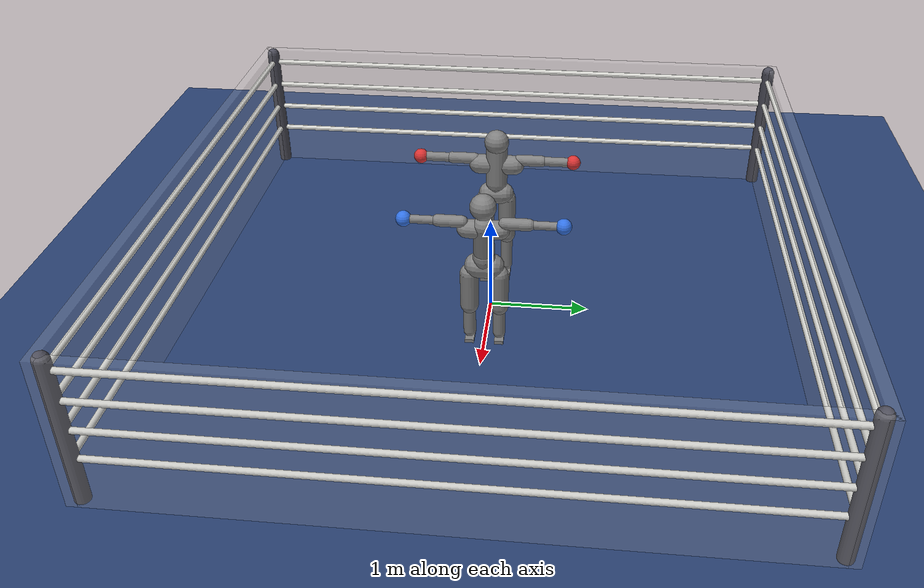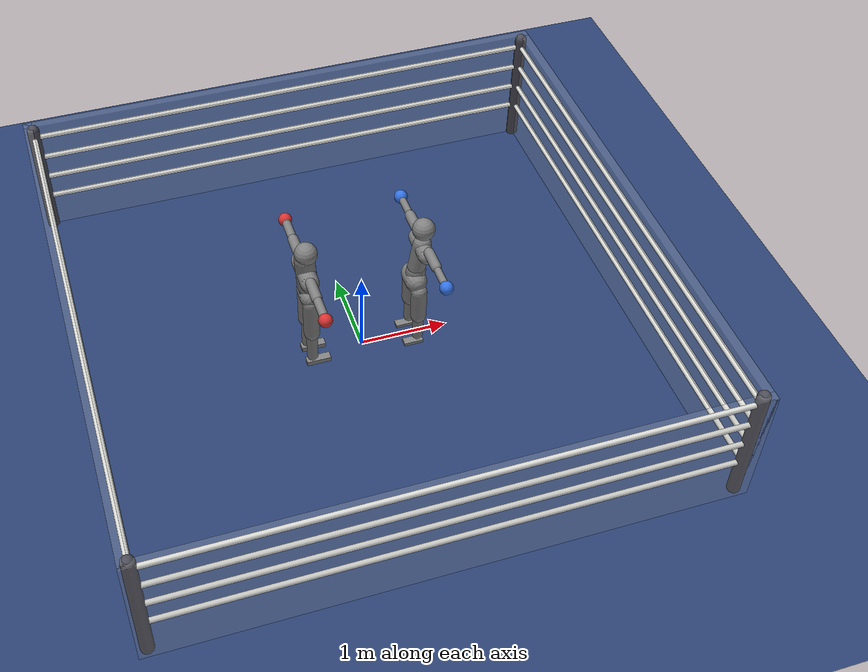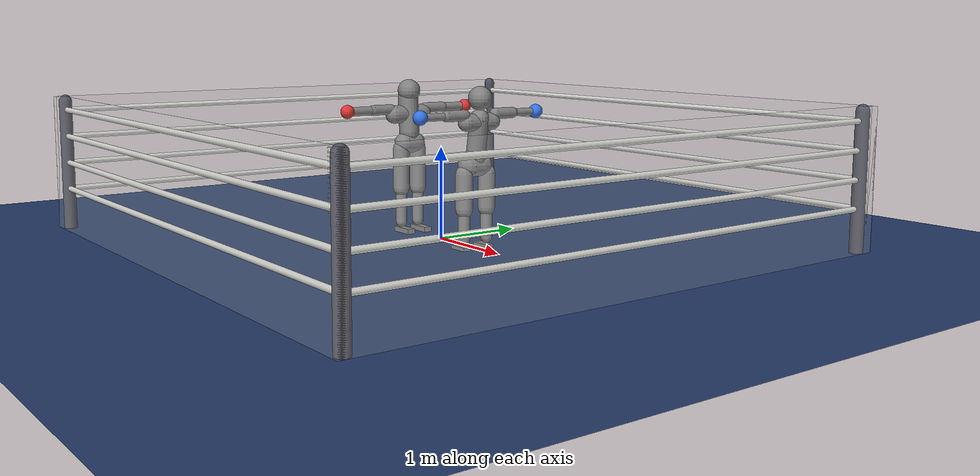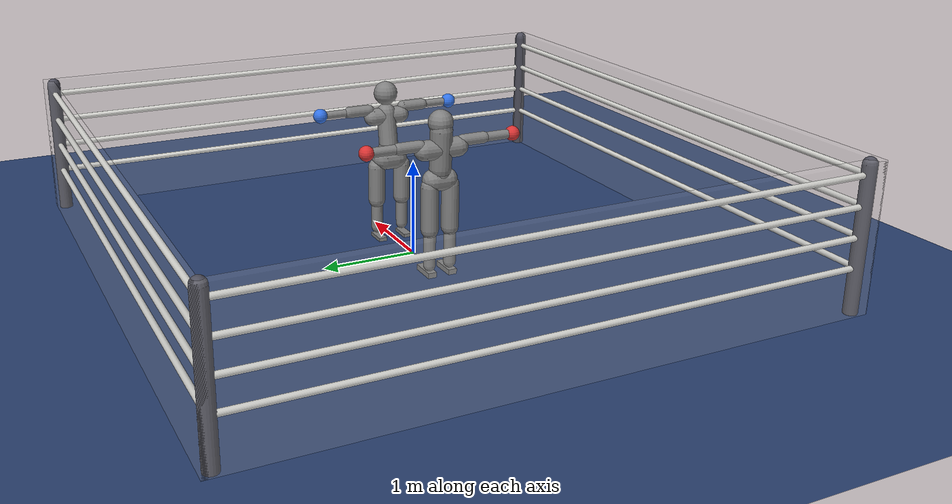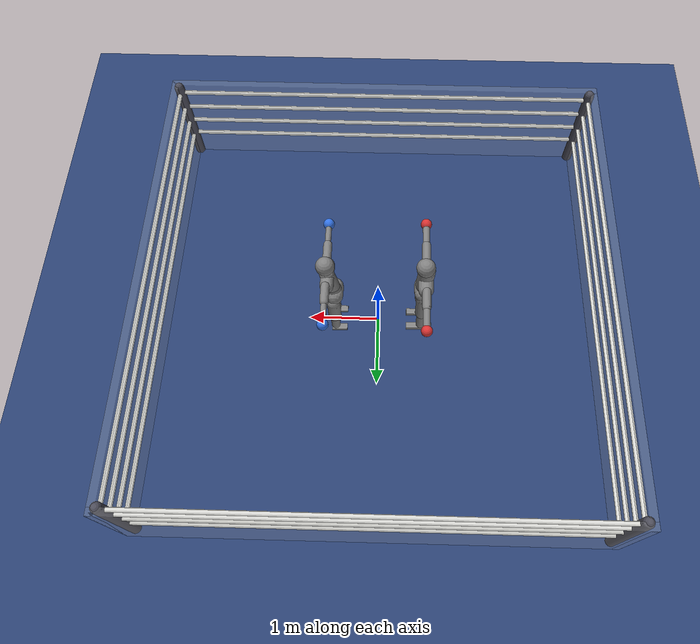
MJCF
<mujoco model="trump_vs_grandma_spar">
  <compiler angle="degree" inertiafromgeom="true" autolimits="true"/>
  <option timestep="0.005" iterations="10" ls_iterations="10" integrator="implicitfast">
    <flag eulerdamp="disable"/>
  </option>
  <default>
    <geom contype="1" conaffinity="1" condim="3" friction="1.0 0.005 0.0001" density="1000" margin="0"/>
    <joint limited="true"/>
    <position ctrllimited="true"/>
  </default>
  <asset>
    <texture name="grid" type="2d" builtin="checker" rgb1=".18 .28 .48" rgb2=".14 .22 .40" width="300" height="300"/>
    <material name="grid" texture="grid" texrepeat="6 6" reflectance="0"/>
  </asset>
  <worldbody>
    <light pos="0 0 5" dir="0 0 -1" directional="true"/>
    <geom name="floor" type="plane" contype="3" conaffinity="3" size="0 0 0.05" material="grid" friction="1.0 0.005 0.0001"/>
    <geom name="rope_n" type="box" pos="0.0000 3.1000 0.7500" size="3.1500 0.0500 0.7500" rgba="0.8 0.8 0.8 0.15"/>
    <geom name="rope_s" type="box" pos="0.0000 -3.1000 0.7500" size="3.1500 0.0500 0.7500" rgba="0.8 0.8 0.8 0.15"/>
    <geom name="rope_e" type="box" pos="3.1000 0.0000 0.7500" size="0.0500 3.1500 0.7500" rgba="0.8 0.8 0.8 0.15"/>
    <geom name="rope_w" type="box" pos="-3.1000 0.0000 0.7500" size="0.0500 3.1500 0.7500" rgba="0.8 0.8 0.8 0.15"/>
    <body name="a_pelvis" pos="-0.6000 0.0000 0.9982" quat="1.00000 0 0 0.00000">
      <freejoint name="a_root"/>
      <geom name="a_pelvis_geom" type="capsule" fromto="0.0000 -0.0700 0.0000 0.0000 0.0700 0.0000" size="0.1121" mass="9.6630" />
      <geom name="a_pelvis_up" type="capsule" fromto="0.0000 0.0000 0.0000 -0.0074 0.0000 0.0765" size="0.1009" mass="5.7156" />
      <body name="a_torso" pos="-0.0074 0.0000 0.0965">
        <joint name="a_abdomen_z" type="hinge" axis="0 0 1" range="-45 45" damping="0.5" armature="0.08" stiffness="0"/>
        <joint name="a_abdomen_y" type="hinge" axis="0 1 0" range="-60 30" damping="0.5" armature="0.08" stiffness="0"/>
        <joint name="a_abdomen_x" type="hinge" axis="1 0 0" range="-35 35" damping="0.5" armature="0.08" stiffness="0"/>
        <geom name="a_torso_geom" type="capsule" fromto="0.0000 0.0000 0.0200 -0.0223 0.0000 0.4131" size="0.1121" mass="38.4465" />
        <geom name="a_chest_geom" type="capsule" fromto="-0.0178 -0.1841 0.2257 -0.0178 0.1841 0.2257" size="0.1009" mass="0.5"/>
        <geom name="a_head_geom" type="sphere" pos="-0.0037 0.0000 0.4861" size="0.1250" mass="8.7723" />
        <body name="a_upper_arm_l" pos="-0.0223 0.2301 0.2821">
          <joint name="a_shoulder_x_l" type="hinge" axis="1 0 0" range="-170 30" damping="0.5" armature="0.03" stiffness="0"/>
          <joint name="a_shoulder_z_l" type="hinge" axis="0 0 1" range="-110 110" damping="0.5" armature="0.03" stiffness="0"/>
          <geom name="a_upper_arm_l_geom" type="capsule" fromto="0.0000 0.0000 0.0000 0.0000 0.2324 0.0000" size="0.0580" mass="3.0324" />
          <body name="a_forearm_l" pos="0.0000 0.2324 0.0000">
            <joint name="a_elbow_l" type="hinge" axis="0 0 1" range="-150 0" damping="0.5" armature="0.02" stiffness="0"/>
            <geom name="a_forearm_l_geom" type="capsule" fromto="0.0000 0.0000 0.0000 0.0000 0.2561 0.0000" size="0.0480" mass="1.7328" />
            <geom name="a_glove_l" type="sphere" pos="0.0000 0.3236 0.0000" size="0.0750" mass="0.9328" rgba="0.85 0.2 0.2 1"/>
          </body>
        </body>
        <body name="a_upper_arm_r" pos="-0.0223 -0.2301 0.2821">
          <joint name="a_shoulder_x_r" type="hinge" axis="1 0 0" range="-30 170" damping="0.5" armature="0.03" stiffness="0"/>
          <joint name="a_shoulder_z_r" type="hinge" axis="0 0 1" range="-110 110" damping="0.5" armature="0.03" stiffness="0"/>
          <geom name="a_upper_arm_r_geom" type="capsule" fromto="0.0000 0.0000 0.0000 0.0000 -0.2324 0.0000" size="0.0580" mass="3.0324" />
          <body name="a_forearm_r" pos="0.0000 -0.2324 0.0000">
            <joint name="a_elbow_r" type="hinge" axis="0 0 1" range="0 150" damping="0.5" armature="0.02" stiffness="0"/>
            <geom name="a_forearm_r_geom" type="capsule" fromto="0.0000 0.0000 0.0000 0.0000 -0.2561 0.0000" size="0.0480" mass="1.7328" />
            <geom name="a_glove_r" type="sphere" pos="0.0000 -0.3236 0.0000" size="0.0750" mass="0.9328" rgba="0.85 0.2 0.2 1"/>
          </body>
        </body>
      </body>
      <body name="a_thigh_l" pos="-0.0074 0.1113 -0.0593">
        <joint name="a_hip_x_l" type="hinge" axis="1 0 0" range="-40 40" damping="0.5" armature="0.1" stiffness="0"/>
        <joint name="a_hip_z_l" type="hinge" axis="0 0 1" range="-35 35" damping="0.5" armature="0.1" stiffness="0"/>
        <joint name="a_hip_y_l" type="hinge" axis="0 1 0" range="-120 30" damping="0.5" armature="0.1" stiffness="0"/>
        <geom name="a_thigh_l_geom" type="capsule" fromto="0.0000 0.0000 0.0000 0.0000 0.0000 -0.4454" size="0.0900" mass="10.8300" />
        <body name="a_shin_l" pos="0.0000 0.0000 -0.4454">
          <joint name="a_knee_l" type="hinge" axis="0 1 0" range="0 150" damping="0.5" armature="0.1" stiffness="0"/>
          <geom name="a_shin_l_geom" type="capsule" fromto="0.0000 0.0000 0.0000 0.0000 0.0000 -0.3790" size="0.0620" mass="5.0359" />
          <body name="a_foot_l" pos="0.0000 0.0000 -0.3790">
            <joint name="a_ankle_y_l" type="hinge" axis="0 1 0" range="-20 50" damping="0.5" armature="0.03" stiffness="0"/>
            <joint name="a_ankle_x_l" type="hinge" axis="1 0 0" range="-25 25" damping="0.5" armature="0.03" stiffness="0"/>
            <geom name="a_foot_l_geom" type="box" pos="0.0627 0.0000 -0.0870" size="0.1363 0.0450 0.0280" mass="1.5704" friction="1.0 0.005 0.0001"/>
            <site name="a_foot_l_site" pos="0.0627 0.0000 -0.0870" size="0.01"/>
          </body>
        </body>
      </body>
      <body name="a_thigh_r" pos="-0.0074 -0.1113 -0.0593">
        <joint name="a_hip_x_r" type="hinge" axis="1 0 0" range="-40 40" damping="0.5" armature="0.1" stiffness="0"/>
        <joint name="a_hip_z_r" type="hinge" axis="0 0 1" range="-35 35" damping="0.5" armature="0.1" stiffness="0"/>
        <joint name="a_hip_y_r" type="hinge" axis="0 1 0" range="-120 30" damping="0.5" armature="0.1" stiffness="0"/>
        <geom name="a_thigh_r_geom" type="capsule" fromto="0.0000 0.0000 0.0000 0.0000 0.0000 -0.4454" size="0.0900" mass="10.8300" />
        <body name="a_shin_r" pos="0.0000 0.0000 -0.4454">
          <joint name="a_knee_r" type="hinge" axis="0 1 0" range="0 150" damping="0.5" armature="0.1" stiffness="0"/>
          <geom name="a_shin_r_geom" type="capsule" fromto="0.0000 0.0000 0.0000 0.0000 0.0000 -0.3790" size="0.0620" mass="5.0359" />
          <body name="a_foot_r" pos="0.0000 0.0000 -0.3790">
            <joint name="a_ankle_y_r" type="hinge" axis="0 1 0" range="-20 50" damping="0.5" armature="0.03" stiffness="0"/>
            <joint name="a_ankle_x_r" type="hinge" axis="1 0 0" range="-25 25" damping="0.5" armature="0.03" stiffness="0"/>
            <geom name="a_foot_r_geom" type="box" pos="0.0627 0.0000 -0.0870" size="0.1363 0.0450 0.0280" mass="1.5704" friction="1.0 0.005 0.0001"/>
            <site name="a_foot_r_site" pos="0.0627 0.0000 -0.0870" size="0.01"/>
          </body>
        </body>
      </body>
    </body>
    <body name="b_pelvis" pos="0.6000 0.0000 0.8758" quat="0.00000 0 0 1.00000">
      <freejoint name="b_root"/>
      <geom name="b_pelvis_geom" type="capsule" fromto="0.0000 -0.0700 0.0000 0.0000 0.0700 0.0000" size="0.1216" mass="7.2734" />
      <geom name="b_pelvis_up" type="capsule" fromto="0.0000 0.0000 0.0000 -0.0203 0.0000 0.1106" size="0.1094" mass="5.0380" />
      <body name="b_torso" pos="-0.0203 0.0000 0.1306">
        <joint name="b_abdomen_z" type="hinge" axis="0 0 1" range="-45 45" damping="0.5" armature="0.08" stiffness="0"/>
        <joint name="b_abdomen_y" type="hinge" axis="0 1 0" range="-60 30" damping="0.5" armature="0.08" stiffness="0"/>
        <joint name="b_abdomen_x" type="hinge" axis="1 0 0" range="-35 35" damping="0.5" armature="0.08" stiffness="0"/>
        <geom name="b_torso_geom" type="capsule" fromto="0.0000 0.0000 0.0200 -0.0561 0.0000 0.3509" size="0.1004" mass="30.7785" />
        <geom name="b_chest_geom" type="capsule" fromto="-0.0509 -0.1584 0.3169 -0.0509 0.1584 0.3169" size="0.0904" mass="0.5"/>
        <geom name="b_head_geom" type="sphere" pos="-0.0666 0.0000 0.5613" size="0.1250" mass="7.0227" />
        <body name="b_upper_arm_l" pos="-0.0636 0.1980 0.3961">
          <joint name="b_shoulder_x_l" type="hinge" axis="1 0 0" range="-170 30" damping="0.5" armature="0.03" stiffness="0"/>
          <joint name="b_shoulder_z_l" type="hinge" axis="0 0 1" range="-110 110" damping="0.5" armature="0.03" stiffness="0"/>
          <geom name="b_upper_arm_l_geom" type="capsule" fromto="0.0000 0.0000 0.0000 0.0000 0.2236 0.0000" size="0.0580" mass="2.4276" />
          <body name="b_forearm_l" pos="0.0000 0.2236 0.0000">
            <joint name="b_elbow_l" type="hinge" axis="0 0 1" range="-150 0" damping="0.5" armature="0.02" stiffness="0"/>
            <geom name="b_forearm_l_geom" type="capsule" fromto="0.0000 0.0000 0.0000 0.0000 0.2519 0.0000" size="0.0402" mass="1.3872" />
            <geom name="b_glove_l" type="sphere" pos="0.0000 0.3194 0.0000" size="0.0750" mass="0.8032" rgba="0.2 0.45 0.9 1"/>
          </body>
        </body>
        <body name="b_upper_arm_r" pos="-0.0636 -0.1980 0.3961">
          <joint name="b_shoulder_x_r" type="hinge" axis="1 0 0" range="-30 170" damping="0.5" armature="0.03" stiffness="0"/>
          <joint name="b_shoulder_z_r" type="hinge" axis="0 0 1" range="-110 110" damping="0.5" armature="0.03" stiffness="0"/>
          <geom name="b_upper_arm_r_geom" type="capsule" fromto="0.0000 0.0000 0.0000 0.0000 -0.2236 0.0000" size="0.0580" mass="2.4276" />
          <body name="b_forearm_r" pos="0.0000 -0.2236 0.0000">
            <joint name="b_elbow_r" type="hinge" axis="0 0 1" range="0 150" damping="0.5" armature="0.02" stiffness="0"/>
            <geom name="b_forearm_r_geom" type="capsule" fromto="0.0000 0.0000 0.0000 0.0000 -0.2519 0.0000" size="0.0402" mass="1.3872" />
            <geom name="b_glove_r" type="sphere" pos="0.0000 -0.3194 0.0000" size="0.0750" mass="0.8032" rgba="0.2 0.45 0.9 1"/>
          </body>
        </body>
      </body>
      <body name="b_thigh_l" pos="-0.0109 0.1457 -0.0890">
        <joint name="b_hip_x_l" type="hinge" axis="1 0 0" range="-40 40" damping="0.5" armature="0.1" stiffness="0"/>
        <joint name="b_hip_z_l" type="hinge" axis="0 0 1" range="-35 35" damping="0.5" armature="0.1" stiffness="0"/>
        <joint name="b_hip_y_l" type="hinge" axis="0 1 0" range="-120 30" damping="0.5" armature="0.1" stiffness="0"/>
        <geom name="b_thigh_l_geom" type="capsule" fromto="0.0000 0.0000 0.0000 0.0000 0.0000 -0.3653" size="0.0900" mass="8.6700" />
        <body name="b_shin_l" pos="0.0000 0.0000 -0.3653">
          <joint name="b_knee_l" type="hinge" axis="0 1 0" range="0 150" damping="0.5" armature="0.1" stiffness="0"/>
          <geom name="b_shin_l_geom" type="capsule" fromto="0.0000 0.0000 0.0000 0.0000 0.0000 -0.3152" size="0.0620" mass="4.0316" />
          <body name="b_foot_l" pos="0.0000 0.0000 -0.3152">
            <joint name="b_ankle_y_l" type="hinge" axis="0 1 0" range="-20 50" damping="0.5" armature="0.03" stiffness="0"/>
            <joint name="b_ankle_x_l" type="hinge" axis="1 0 0" range="-25 25" damping="0.5" armature="0.03" stiffness="0"/>
            <geom name="b_foot_l_geom" type="box" pos="0.0506 0.0000 -0.1050" size="0.1100 0.0450 0.0280" mass="1.2572" friction="1.0 0.005 0.0001"/>
            <site name="b_foot_l_site" pos="0.0506 0.0000 -0.1050" size="0.01"/>
          </body>
        </body>
      </body>
      <body name="b_thigh_r" pos="-0.0109 -0.1457 -0.0890">
        <joint name="b_hip_x_r" type="hinge" axis="1 0 0" range="-40 40" damping="0.5" armature="0.1" stiffness="0"/>
        <joint name="b_hip_z_r" type="hinge" axis="0 0 1" range="-35 35" damping="0.5" armature="0.1" stiffness="0"/>
        <joint name="b_hip_y_r" type="hinge" axis="0 1 0" range="-120 30" damping="0.5" armature="0.1" stiffness="0"/>
        <geom name="b_thigh_r_geom" type="capsule" fromto="0.0000 0.0000 0.0000 0.0000 0.0000 -0.3653" size="0.0900" mass="8.6700" />
        <body name="b_shin_r" pos="0.0000 0.0000 -0.3653">
          <joint name="b_knee_r" type="hinge" axis="0 1 0" range="0 150" damping="0.5" armature="0.1" stiffness="0"/>
          <geom name="b_shin_r_geom" type="capsule" fromto="0.0000 0.0000 0.0000 0.0000 0.0000 -0.3152" size="0.0620" mass="4.0316" />
          <body name="b_foot_r" pos="0.0000 0.0000 -0.3152">
            <joint name="b_ankle_y_r" type="hinge" axis="0 1 0" range="-20 50" damping="0.5" armature="0.03" stiffness="0"/>
            <joint name="b_ankle_x_r" type="hinge" axis="1 0 0" range="-25 25" damping="0.5" armature="0.03" stiffness="0"/>
            <geom name="b_foot_r_geom" type="box" pos="0.0506 0.0000 -0.1050" size="0.1100 0.0450 0.0280" mass="1.2572" friction="1.0 0.005 0.0001"/>
            <site name="b_foot_r_site" pos="0.0506 0.0000 -0.1050" size="0.01"/>
          </body>
        </body>
      </body>
    </body>
      <geom name="rope_n_0" type="capsule" fromto="-3.05 3.05 0.45 3.05 3.05 0.45" size="0.03" solref="0.2 1" contype="3" conaffinity="3" rgba="0.86 0.86 0.84 1"/>
    <geom name="rope_s_0" type="capsule" fromto="-3.05 -3.05 0.45 3.05 -3.05 0.45" size="0.03" solref="0.2 1" contype="3" conaffinity="3" rgba="0.86 0.86 0.84 1"/>
    <geom name="rope_e_0" type="capsule" fromto="3.05 -3.05 0.45 3.05 3.05 0.45" size="0.03" solref="0.2 1" contype="3" conaffinity="3" rgba="0.86 0.86 0.84 1"/>
    <geom name="rope_w_0" type="capsule" fromto="-3.05 -3.05 0.45 -3.05 3.05 0.45" size="0.03" solref="0.2 1" contype="3" conaffinity="3" rgba="0.86 0.86 0.84 1"/>
    <geom name="rope_n_1" type="capsule" fromto="-3.05 3.05 0.75 3.05 3.05 0.75" size="0.03" solref="0.2 1" contype="3" conaffinity="3" rgba="0.86 0.86 0.84 1"/>
    <geom name="rope_s_1" type="capsule" fromto="-3.05 -3.05 0.75 3.05 -3.05 0.75" size="0.03" solref="0.2 1" contype="3" conaffinity="3" rgba="0.86 0.86 0.84 1"/>
    <geom name="rope_e_1" type="capsule" fromto="3.05 -3.05 0.75 3.05 3.05 0.75" size="0.03" solref="0.2 1" contype="3" conaffinity="3" rgba="0.86 0.86 0.84 1"/>
    <geom name="rope_w_1" type="capsule" fromto="-3.05 -3.05 0.75 -3.05 3.05 0.75" size="0.03" solref="0.2 1" contype="3" conaffinity="3" rgba="0.86 0.86 0.84 1"/>
    <geom name="rope_n_2" type="capsule" fromto="-3.05 3.05 1.05 3.05 3.05 1.05" size="0.03" solref="0.2 1" contype="3" conaffinity="3" rgba="0.86 0.86 0.84 1"/>
    <geom name="rope_s_2" type="capsule" fromto="-3.05 -3.05 1.05 3.05 -3.05 1.05" size="0.03" solref="0.2 1" contype="3" conaffinity="3" rgba="0.86 0.86 0.84 1"/>
    <geom name="rope_e_2" type="capsule" fromto="3.05 -3.05 1.05 3.05 3.05 1.05" size="0.03" solref="0.2 1" contype="3" conaffinity="3" rgba="0.86 0.86 0.84 1"/>
    <geom name="rope_w_2" type="capsule" fromto="-3.05 -3.05 1.05 -3.05 3.05 1.05" size="0.03" solref="0.2 1" contype="3" conaffinity="3" rgba="0.86 0.86 0.84 1"/>
    <geom name="rope_n_3" type="capsule" fromto="-3.05 3.05 1.35 3.05 3.05 1.35" size="0.03" solref="0.2 1" contype="3" conaffinity="3" rgba="0.86 0.86 0.84 1"/>
    <geom name="rope_s_3" type="capsule" fromto="-3.05 -3.05 1.35 3.05 -3.05 1.35" size="0.03" solref="0.2 1" contype="3" conaffinity="3" rgba="0.86 0.86 0.84 1"/>
    <geom name="rope_e_3" type="capsule" fromto="3.05 -3.05 1.35 3.05 3.05 1.35" size="0.03" solref="0.2 1" contype="3" conaffinity="3" rgba="0.86 0.86 0.84 1"/>
    <geom name="rope_w_3" type="capsule" fromto="-3.05 -3.05 1.35 -3.05 3.05 1.35" size="0.03" solref="0.2 1" contype="3" conaffinity="3" rgba="0.86 0.86 0.84 1"/>
    <geom name="post_ne" type="capsule" fromto="3.05 3.05 0 3.05 3.05 1.45" size="0.07" contype="3" conaffinity="3" rgba="0.3 0.3 0.35 1"/>
    <geom name="post_nw" type="capsule" fromto="-3.05 3.05 0 -3.05 3.05 1.45" size="0.07" contype="3" conaffinity="3" rgba="0.3 0.3 0.35 1"/>
    <geom name="post_se" type="capsule" fromto="3.05 -3.05 0 3.05 -3.05 1.45" size="0.07" contype="3" conaffinity="3" rgba="0.3 0.3 0.35 1"/>
    <geom name="post_sw" type="capsule" fromto="-3.05 -3.05 0 -3.05 -3.05 1.45" size="0.07" contype="3" conaffinity="3" rgba="0.3 0.3 0.35 1"/>
  </worldbody>
  <contact>
    <exclude body1="a_pelvis" body2="a_torso"/>
    <exclude body1="a_pelvis" body2="a_thigh_l"/>
    <exclude body1="a_thigh_l" body2="a_shin_l"/>
    <exclude body1="a_shin_l" body2="a_foot_l"/>
    <exclude body1="a_torso" body2="a_upper_arm_l"/>
    <exclude body1="a_upper_arm_l" body2="a_forearm_l"/>
    <exclude body1="a_pelvis" body2="a_thigh_r"/>
    <exclude body1="a_thigh_r" body2="a_shin_r"/>
    <exclude body1="a_shin_r" body2="a_foot_r"/>
    <exclude body1="a_torso" body2="a_upper_arm_r"/>
    <exclude body1="a_upper_arm_r" body2="a_forearm_r"/>
    <exclude body1="b_pelvis" body2="b_torso"/>
    <exclude body1="b_pelvis" body2="b_thigh_l"/>
    <exclude body1="b_thigh_l" body2="b_shin_l"/>
    <exclude body1="b_shin_l" body2="b_foot_l"/>
    <exclude body1="b_torso" body2="b_upper_arm_l"/>
    <exclude body1="b_upper_arm_l" body2="b_forearm_l"/>
    <exclude body1="b_pelvis" body2="b_thigh_r"/>
    <exclude body1="b_thigh_r" body2="b_shin_r"/>
    <exclude body1="b_shin_r" body2="b_foot_r"/>
    <exclude body1="b_torso" body2="b_upper_arm_r"/>
    <exclude body1="b_upper_arm_r" body2="b_forearm_r"/>
  </contact>
  <actuator>
    <position name="a_abdomen_z" joint="a_abdomen_z" kp="495.9" kv="23.142" forcerange="-187.34 187.34" ctrlrange="-0.7854 0.7854"/>
    <position name="a_abdomen_y" joint="a_abdomen_y" kp="495.9" kv="23.142" forcerange="-187.34 187.34" ctrlrange="-1.0472 0.5236"/>
    <position name="a_abdomen_x" joint="a_abdomen_x" kp="495.9" kv="23.142" forcerange="-187.34 187.34" ctrlrange="-0.6109 0.6109"/>
    <position name="a_shoulder_x_l" joint="a_shoulder_x_l" kp="176.32" kv="8.816" forcerange="-110.2 110.2" ctrlrange="-2.9671 0.5236"/>
    <position name="a_shoulder_z_l" joint="a_shoulder_z_l" kp="176.32" kv="8.816" forcerange="-110.2 110.2" ctrlrange="-1.9199 1.9199"/>
    <position name="a_elbow_l" joint="a_elbow_l" kp="121.22" kv="6.061" forcerange="-77.14 77.14" ctrlrange="-2.6180 0.0000"/>
    <position name="a_shoulder_x_r" joint="a_shoulder_x_r" kp="176.32" kv="8.816" forcerange="-110.2 110.2" ctrlrange="-0.5236 2.9671"/>
    <position name="a_shoulder_z_r" joint="a_shoulder_z_r" kp="176.32" kv="8.816" forcerange="-110.2 110.2" ctrlrange="-1.9199 1.9199"/>
    <position name="a_elbow_r" joint="a_elbow_r" kp="121.22" kv="6.061" forcerange="-77.14 77.14" ctrlrange="0.0000 2.6180"/>
    <position name="a_hip_x_l" joint="a_hip_x_l" kp="661.2" kv="33.06" forcerange="-264.48 264.48" ctrlrange="-0.6981 0.6981"/>
    <position name="a_hip_z_l" joint="a_hip_z_l" kp="661.2" kv="33.06" forcerange="-264.48 264.48" ctrlrange="-0.6109 0.6109"/>
    <position name="a_hip_y_l" joint="a_hip_y_l" kp="661.2" kv="33.06" forcerange="-264.48 264.48" ctrlrange="-2.0944 0.5236"/>
    <position name="a_knee_l" joint="a_knee_l" kp="661.2" kv="33.06" forcerange="-286.52 286.52" ctrlrange="0.0000 2.6180"/>
    <position name="a_ankle_y_l" joint="a_ankle_y_l" kp="826.5" kv="33.06" forcerange="-242.44 242.44" ctrlrange="-0.3491 0.8727"/>
    <position name="a_ankle_x_l" joint="a_ankle_x_l" kp="88.16" kv="4.408" forcerange="-66.12 66.12" ctrlrange="-0.4363 0.4363"/>
    <position name="a_hip_x_r" joint="a_hip_x_r" kp="661.2" kv="33.06" forcerange="-264.48 264.48" ctrlrange="-0.6981 0.6981"/>
    <position name="a_hip_z_r" joint="a_hip_z_r" kp="661.2" kv="33.06" forcerange="-264.48 264.48" ctrlrange="-0.6109 0.6109"/>
    <position name="a_hip_y_r" joint="a_hip_y_r" kp="661.2" kv="33.06" forcerange="-264.48 264.48" ctrlrange="-2.0944 0.5236"/>
    <position name="a_knee_r" joint="a_knee_r" kp="661.2" kv="33.06" forcerange="-286.52 286.52" ctrlrange="0.0000 2.6180"/>
    <position name="a_ankle_y_r" joint="a_ankle_y_r" kp="826.5" kv="33.06" forcerange="-242.44 242.44" ctrlrange="-0.3491 0.8727"/>
    <position name="a_ankle_x_r" joint="a_ankle_x_r" kp="88.16" kv="4.408" forcerange="-66.12 66.12" ctrlrange="-0.4363 0.4363"/>
    <position name="b_abdomen_z" joint="b_abdomen_z" kp="238.05" kv="11.109" forcerange="-89.93 89.93" ctrlrange="-0.7854 0.7854"/>
    <position name="b_abdomen_y" joint="b_abdomen_y" kp="238.05" kv="11.109" forcerange="-89.93 89.93" ctrlrange="-1.0472 0.5236"/>
    <position name="b_abdomen_x" joint="b_abdomen_x" kp="238.05" kv="11.109" forcerange="-89.93 89.93" ctrlrange="-0.6109 0.6109"/>
    <position name="b_shoulder_x_l" joint="b_shoulder_x_l" kp="84.64" kv="4.232" forcerange="-52.9 52.9" ctrlrange="-2.9671 0.5236"/>
    <position name="b_shoulder_z_l" joint="b_shoulder_z_l" kp="84.64" kv="4.232" forcerange="-52.9 52.9" ctrlrange="-1.9199 1.9199"/>
    <position name="b_elbow_l" joint="b_elbow_l" kp="58.19" kv="2.909" forcerange="-37.03 37.03" ctrlrange="-2.6180 0.0000"/>
    <position name="b_shoulder_x_r" joint="b_shoulder_x_r" kp="84.64" kv="4.232" forcerange="-52.9 52.9" ctrlrange="-0.5236 2.9671"/>
    <position name="b_shoulder_z_r" joint="b_shoulder_z_r" kp="84.64" kv="4.232" forcerange="-52.9 52.9" ctrlrange="-1.9199 1.9199"/>
    <position name="b_elbow_r" joint="b_elbow_r" kp="58.19" kv="2.909" forcerange="-37.03 37.03" ctrlrange="0.0000 2.6180"/>
    <position name="b_hip_x_l" joint="b_hip_x_l" kp="317.4" kv="15.87" forcerange="-126.96 126.96" ctrlrange="-0.6981 0.6981"/>
    <position name="b_hip_z_l" joint="b_hip_z_l" kp="317.4" kv="15.87" forcerange="-126.96 126.96" ctrlrange="-0.6109 0.6109"/>
    <position name="b_hip_y_l" joint="b_hip_y_l" kp="317.4" kv="15.87" forcerange="-126.96 126.96" ctrlrange="-2.0944 0.5236"/>
    <position name="b_knee_l" joint="b_knee_l" kp="317.4" kv="15.87" forcerange="-137.54 137.54" ctrlrange="0.0000 2.6180"/>
    <position name="b_ankle_y_l" joint="b_ankle_y_l" kp="396.75" kv="15.87" forcerange="-116.38 116.38" ctrlrange="-0.3491 0.8727"/>
    <position name="b_ankle_x_l" joint="b_ankle_x_l" kp="42.32" kv="2.116" forcerange="-31.74 31.74" ctrlrange="-0.4363 0.4363"/>
    <position name="b_hip_x_r" joint="b_hip_x_r" kp="317.4" kv="15.87" forcerange="-126.96 126.96" ctrlrange="-0.6981 0.6981"/>
    <position name="b_hip_z_r" joint="b_hip_z_r" kp="317.4" kv="15.87" forcerange="-126.96 126.96" ctrlrange="-0.6109 0.6109"/>
    <position name="b_hip_y_r" joint="b_hip_y_r" kp="317.4" kv="15.87" forcerange="-126.96 126.96" ctrlrange="-2.0944 0.5236"/>
    <position name="b_knee_r" joint="b_knee_r" kp="317.4" kv="15.87" forcerange="-137.54 137.54" ctrlrange="0.0000 2.6180"/>
    <position name="b_ankle_y_r" joint="b_ankle_y_r" kp="396.75" kv="15.87" forcerange="-116.38 116.38" ctrlrange="-0.3491 0.8727"/>
    <position name="b_ankle_x_r" joint="b_ankle_x_r" kp="42.32" kv="2.116" forcerange="-31.74 31.74" ctrlrange="-0.4363 0.4363"/>
  </actuator>
  <keyframe>
    <key name="stand" qpos="-0.6000 0.0000 0.9790 1.00000 0 0 0.00000 0.0000 0.0000 0.0000 -1.3265 -0.7330 -1.9548 1.3265 0.7330 1.9548 0.0000 0.0000 -0.1656 0.4538 -0.2882 0.0000 0.0000 0.0000 -0.1656 0.4538 -0.2882 0.0000 0.6000 0.0000 0.8853 0.00000 0 0 1.00000 0.0000 0.0000 0.0000 -1.3265 -0.7330 -1.9548 1.3265 0.7330 1.9548 0.0000 0.0000 -0.1351 0.4538 -0.3187 0.0000 0.0000 0.0000 -0.1351 0.4538 -0.3187 0.0000"/>
  </keyframe>
</mujoco>
